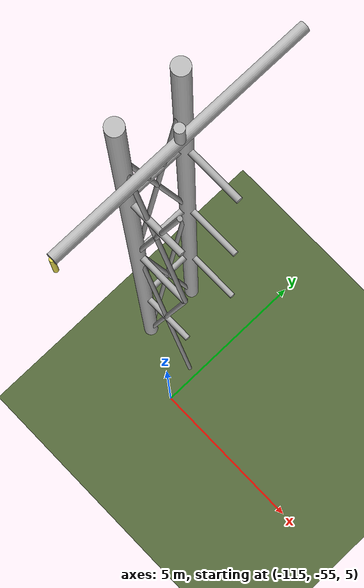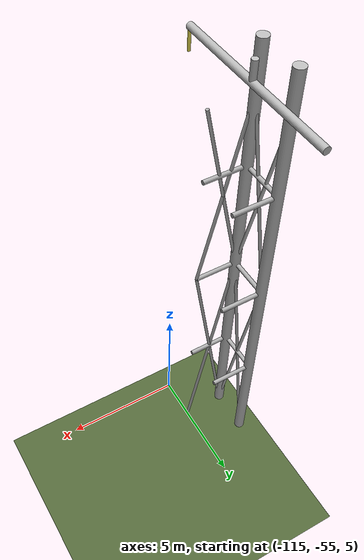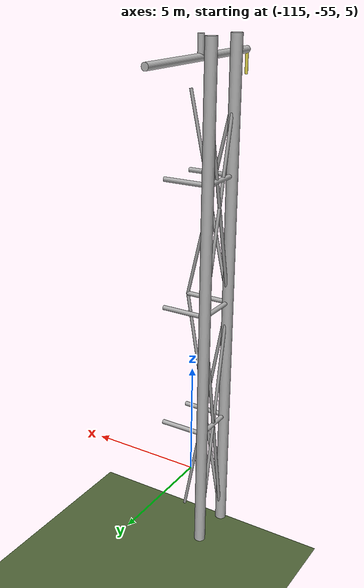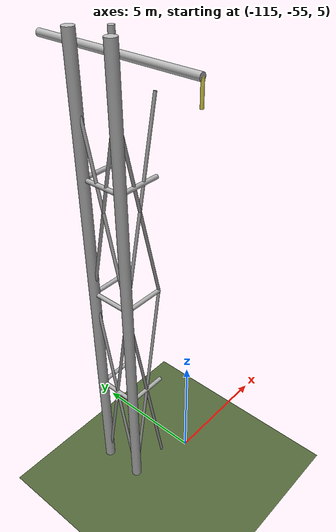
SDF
<sdf version="1.9">
 <world name="power_line_inspection">
  <model name="ground_plane">
   <static>true</static>
   <pose>0 0 -0.01 0 0 0</pose>
   <link name="link">
    <collision name="collision">
     <geometry><plane><normal>0 0 1</normal><size>600 600</size></plane></geometry>
     <surface><friction><ode><mu>1.0</mu><mu2>1.0</mu2></ode></friction></surface>
    </collision>
    <visual name="visual">
     <cast_shadows>false</cast_shadows>
     <geometry><plane><normal>0 0 1</normal><size>600 600</size></plane></geometry>
     <material>
      <ambient>0.28 0.35 0.18 1</ambient>
      <diffuse>0.32 0.40 0.22 1</diffuse>
      <specular>0.02 0.02 0.02 1</specular>
     </material>
    </visual>
   </link>
  </model>
  <model name="base_tower_col-1-1">
   <static>true</static>
   <pose>-117.216 -53.795 14.000 0.00000 0.00000 0.00000</pose>
   <link name="link">
    <visual name="v">
     <geometry><cylinder><radius>0.22</radius><length>20.0000</length></cylinder></geometry>
     <material><ambient>0.72 0.72 0.72 1</ambient><diffuse>0.72 0.72 0.72 1</diffuse></material>
    </visual>
    <collision name="c">
     <geometry><cylinder><radius>0.22</radius><length>20.0000</length></cylinder></geometry>
    </collision>
   </link>
  </model>
  <model name="base_tower_col-11">
   <static>true</static>
   <pose>-117.216 -51.995 14.000 0.00000 0.00000 0.00000</pose>
   <link name="link">
    <visual name="v">
     <geometry><cylinder><radius>0.22</radius><length>20.0000</length></cylinder></geometry>
     <material><ambient>0.72 0.72 0.72 1</ambient><diffuse>0.72 0.72 0.72 1</diffuse></material>
    </visual>
    <collision name="c">
     <geometry><cylinder><radius>0.22</radius><length>20.0000</length></cylinder></geometry>
    </collision>
   </link>
  </model>
  <model name="base_tower_b1_e0">
   <static>true</static>
   <pose>-117.216 -52.895 9.000 -1.57080 0.00000 0.00000</pose>
   <link name="link">
    <visual name="v">
     <geometry><cylinder><radius>0.09</radius><length>1.8000</length></cylinder></geometry>
     <material><ambient>0.68 0.68 0.68 1</ambient><diffuse>0.68 0.68 0.68 1</diffuse></material>
    </visual>
    <collision name="c">
     <geometry><cylinder><radius>0.09</radius><length>1.8000</length></cylinder></geometry>
    </collision>
   </link>
  </model>
  <model name="base_tower_b1_e1">
   <static>true</static>
   <pose>-116.316 -51.995 9.000 0.00000 1.57080 0.00000</pose>
   <link name="link">
    <visual name="v">
     <geometry><cylinder><radius>0.09</radius><length>1.8000</length></cylinder></geometry>
     <material><ambient>0.68 0.68 0.68 1</ambient><diffuse>0.68 0.68 0.68 1</diffuse></material>
    </visual>
    <collision name="c">
     <geometry><cylinder><radius>0.09</radius><length>1.8000</length></cylinder></geometry>
    </collision>
   </link>
  </model>
  <model name="base_tower_b1_e3">
   <static>true</static>
   <pose>-116.316 -53.795 9.000 0.00000 -1.57080 0.00000</pose>
   <link name="link">
    <visual name="v">
     <geometry><cylinder><radius>0.09</radius><length>1.8000</length></cylinder></geometry>
     <material><ambient>0.68 0.68 0.68 1</ambient><diffuse>0.68 0.68 0.68 1</diffuse></material>
    </visual>
    <collision name="c">
     <geometry><cylinder><radius>0.09</radius><length>1.8000</length></cylinder></geometry>
    </collision>
   </link>
  </model>
  <model name="base_tower_b2_e0">
   <static>true</static>
   <pose>-117.216 -52.895 14.000 -1.57080 0.00000 0.00000</pose>
   <link name="link">
    <visual name="v">
     <geometry><cylinder><radius>0.09</radius><length>1.8000</length></cylinder></geometry>
     <material><ambient>0.68 0.68 0.68 1</ambient><diffuse>0.68 0.68 0.68 1</diffuse></material>
    </visual>
    <collision name="c">
     <geometry><cylinder><radius>0.09</radius><length>1.8000</length></cylinder></geometry>
    </collision>
   </link>
  </model>
  <model name="base_tower_b2_e1">
   <static>true</static>
   <pose>-116.316 -51.995 14.000 0.00000 1.57080 0.00000</pose>
   <link name="link">
    <visual name="v">
     <geometry><cylinder><radius>0.09</radius><length>1.8000</length></cylinder></geometry>
     <material><ambient>0.68 0.68 0.68 1</ambient><diffuse>0.68 0.68 0.68 1</diffuse></material>
    </visual>
    <collision name="c">
     <geometry><cylinder><radius>0.09</radius><length>1.8000</length></cylinder></geometry>
    </collision>
   </link>
  </model>
  <model name="base_tower_b2_e3">
   <static>true</static>
   <pose>-116.316 -53.795 14.000 0.00000 -1.57080 0.00000</pose>
   <link name="link">
    <visual name="v">
     <geometry><cylinder><radius>0.09</radius><length>1.8000</length></cylinder></geometry>
     <material><ambient>0.68 0.68 0.68 1</ambient><diffuse>0.68 0.68 0.68 1</diffuse></material>
    </visual>
    <collision name="c">
     <geometry><cylinder><radius>0.09</radius><length>1.8000</length></cylinder></geometry>
    </collision>
   </link>
  </model>
  <model name="base_tower_b3_e0">
   <static>true</static>
   <pose>-117.216 -52.895 19.000 -1.57080 0.00000 0.00000</pose>
   <link name="link">
    <visual name="v">
     <geometry><cylinder><radius>0.09</radius><length>1.8000</length></cylinder></geometry>
     <material><ambient>0.68 0.68 0.68 1</ambient><diffuse>0.68 0.68 0.68 1</diffuse></material>
    </visual>
    <collision name="c">
     <geometry><cylinder><radius>0.09</radius><length>1.8000</length></cylinder></geometry>
    </collision>
   </link>
  </model>
  <model name="base_tower_b3_e1">
   <static>true</static>
   <pose>-116.316 -51.995 19.000 0.00000 1.57080 0.00000</pose>
   <link name="link">
    <visual name="v">
     <geometry><cylinder><radius>0.09</radius><length>1.8000</length></cylinder></geometry>
     <material><ambient>0.68 0.68 0.68 1</ambient><diffuse>0.68 0.68 0.68 1</diffuse></material>
    </visual>
    <collision name="c">
     <geometry><cylinder><radius>0.09</radius><length>1.8000</length></cylinder></geometry>
    </collision>
   </link>
  </model>
  <model name="base_tower_b3_e3">
   <static>true</static>
   <pose>-116.316 -53.795 19.000 0.00000 -1.57080 0.00000</pose>
   <link name="link">
    <visual name="v">
     <geometry><cylinder><radius>0.09</radius><length>1.8000</length></cylinder></geometry>
     <material><ambient>0.68 0.68 0.68 1</ambient><diffuse>0.68 0.68 0.68 1</diffuse></material>
    </visual>
    <collision name="c">
     <geometry><cylinder><radius>0.09</radius><length>1.8000</length></cylinder></geometry>
    </collision>
   </link>
  </model>
  <model name="base_tower_diag0_0a">
   <static>true</static>
   <pose>-117.216 -52.895 9.000 -0.17809 0.00000 0.00000</pose>
   <link name="link">
    <visual name="v">
     <geometry><cylinder><radius>0.063</radius><length>10.1607</length></cylinder></geometry>
     <material><ambient>0.65 0.65 0.65 1</ambient><diffuse>0.65 0.65 0.65 1</diffuse></material>
    </visual>
    <collision name="c">
     <geometry><cylinder><radius>0.063</radius><length>10.1607</length></cylinder></geometry>
    </collision>
   </link>
  </model>
  <model name="base_tower_diag0_0b">
   <static>true</static>
   <pose>-117.216 -52.895 9.000 0.17809 0.00000 0.00000</pose>
   <link name="link">
    <visual name="v">
     <geometry><cylinder><radius>0.063</radius><length>10.1607</length></cylinder></geometry>
     <material><ambient>0.65 0.65 0.65 1</ambient><diffuse>0.65 0.65 0.65 1</diffuse></material>
    </visual>
    <collision name="c">
     <geometry><cylinder><radius>0.063</radius><length>10.1607</length></cylinder></geometry>
    </collision>
   </link>
  </model>
  <model name="base_tower_diag0_1a">
   <static>true</static>
   <pose>-117.216 -52.895 18.000 -0.22131 0.00000 0.00000</pose>
   <link name="link">
    <visual name="v">
     <geometry><cylinder><radius>0.063</radius><length>8.2000</length></cylinder></geometry>
     <material><ambient>0.65 0.65 0.65 1</ambient><diffuse>0.65 0.65 0.65 1</diffuse></material>
    </visual>
    <collision name="c">
     <geometry><cylinder><radius>0.063</radius><length>8.2000</length></cylinder></geometry>
    </collision>
   </link>
  </model>
  <model name="base_tower_diag0_1b">
   <static>true</static>
   <pose>-117.216 -52.895 18.000 0.22131 0.00000 0.00000</pose>
   <link name="link">
    <visual name="v">
     <geometry><cylinder><radius>0.063</radius><length>8.2000</length></cylinder></geometry>
     <material><ambient>0.65 0.65 0.65 1</ambient><diffuse>0.65 0.65 0.65 1</diffuse></material>
    </visual>
    <collision name="c">
     <geometry><cylinder><radius>0.063</radius><length>8.2000</length></cylinder></geometry>
    </collision>
   </link>
  </model>
  <model name="base_tower_diag2_0a">
   <static>true</static>
   <pose>-116.316 -53.795 9.000 0.00000 0.17809 0.00000</pose>
   <link name="link">
    <visual name="v">
     <geometry><cylinder><radius>0.063</radius><length>10.1607</length></cylinder></geometry>
     <material><ambient>0.65 0.65 0.65 1</ambient><diffuse>0.65 0.65 0.65 1</diffuse></material>
    </visual>
    <collision name="c">
     <geometry><cylinder><radius>0.063</radius><length>10.1607</length></cylinder></geometry>
    </collision>
   </link>
  </model>
  <model name="base_tower_diag2_0b">
   <static>true</static>
   <pose>-116.316 -53.795 9.000 0.00000 -0.17809 0.00000</pose>
   <link name="link">
    <visual name="v">
     <geometry><cylinder><radius>0.063</radius><length>10.1607</length></cylinder></geometry>
     <material><ambient>0.65 0.65 0.65 1</ambient><diffuse>0.65 0.65 0.65 1</diffuse></material>
    </visual>
    <collision name="c">
     <geometry><cylinder><radius>0.063</radius><length>10.1607</length></cylinder></geometry>
    </collision>
   </link>
  </model>
  <model name="base_tower_diag2_1a">
   <static>true</static>
   <pose>-116.316 -53.795 18.000 0.00000 0.22131 0.00000</pose>
   <link name="link">
    <visual name="v">
     <geometry><cylinder><radius>0.063</radius><length>8.2000</length></cylinder></geometry>
     <material><ambient>0.65 0.65 0.65 1</ambient><diffuse>0.65 0.65 0.65 1</diffuse></material>
    </visual>
    <collision name="c">
     <geometry><cylinder><radius>0.063</radius><length>8.2000</length></cylinder></geometry>
    </collision>
   </link>
  </model>
  <model name="base_tower_diag2_1b">
   <static>true</static>
   <pose>-116.316 -53.795 18.000 0.00000 -0.22131 0.00000</pose>
   <link name="link">
    <visual name="v">
     <geometry><cylinder><radius>0.063</radius><length>8.2000</length></cylinder></geometry>
     <material><ambient>0.65 0.65 0.65 1</ambient><diffuse>0.65 0.65 0.65 1</diffuse></material>
    </visual>
    <collision name="c">
     <geometry><cylinder><radius>0.063</radius><length>8.2000</length></cylinder></geometry>
    </collision>
   </link>
  </model>
  <model name="base_tower_arm">
   <static>true</static>
   <pose>-116.316 -52.895 23.200 -1.57080 0.00000 0.00000</pose>
   <link name="link">
    <visual name="v">
     <geometry><cylinder><radius>0.14</radius><length>7.0000</length></cylinder></geometry>
     <material><ambient>0.72 0.72 0.72 1</ambient><diffuse>0.72 0.72 0.72 1</diffuse></material>
    </visual>
    <collision name="c">
     <geometry><cylinder><radius>0.14</radius><length>7.0000</length></cylinder></geometry>
    </collision>
   </link>
  </model>
  <model name="base_tower_vsup">
   <static>true</static>
   <pose>-116.316 -52.895 23.600 3.14159 0.00000 0.00000</pose>
   <link name="link">
    <visual name="v">
     <geometry><cylinder><radius>0.12</radius><length>0.8000</length></cylinder></geometry>
     <material><ambient>0.72 0.72 0.72 1</ambient><diffuse>0.72 0.72 0.72 1</diffuse></material>
    </visual>
    <collision name="c">
     <geometry><cylinder><radius>0.12</radius><length>0.8000</length></cylinder></geometry>
    </collision>
   </link>
  </model>
  <model name="base_tower_insL">
   <static>true</static>
   <pose>-116.316 -56.395 22.750 3.14159 0.00000 0.00000</pose>
   <link name="link">
    <visual name="v">
     <geometry><cylinder><radius>0.06</radius><length>0.9000</length></cylinder></geometry>
     <material><ambient>0.9 0.85 0.3 1</ambient><diffuse>0.9 0.85 0.3 1</diffuse></material>
    </visual>
    <collision name="c">
     <geometry><cylinder><radius>0.06</radius><length>0.9000</length></cylinder></geometry>
    </collision>
   </link>
  </model>
 </world>
</sdf>
